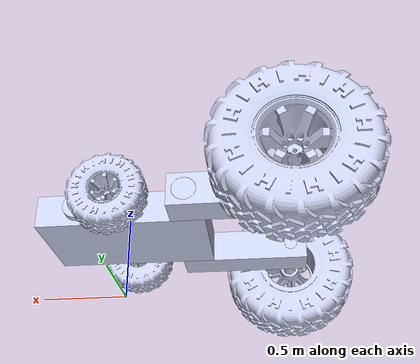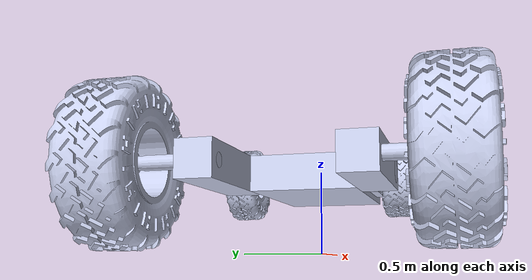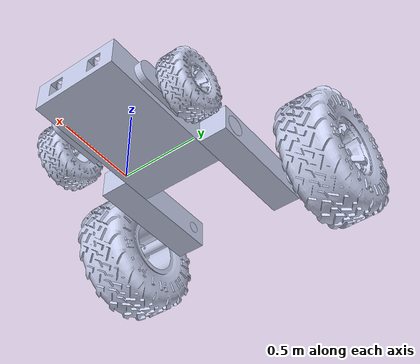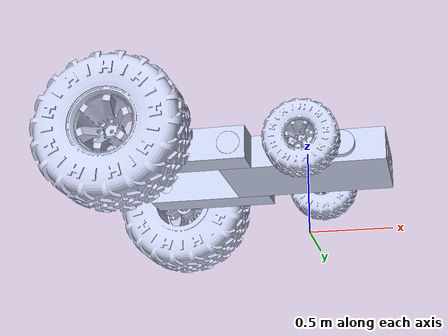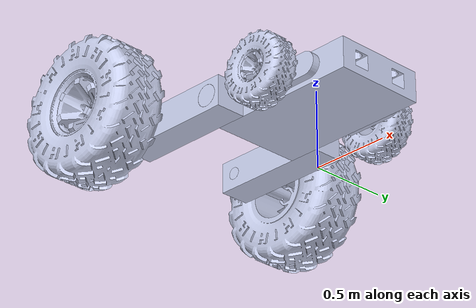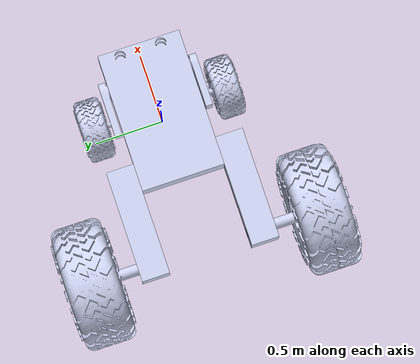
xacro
<?xml version="1.0" encoding="utf-8"?>
<robot
  name="optimus_rear" xmlns:xacro="http://ros.org/wiki/xacro">
  <link
    name="optimus_rear">
    <inertial>
      <origin
        xyz="-0.032745 -5.5511E-17 0.43999"
        rpy="0 0 0" />
      <mass
        value="122.38" />
      <inertia
        ixx="4.8763"
        ixy="4.5526E-16"
        ixz="0.00048288"
        iyy="10.603"
        iyz="-1.9615E-16"
        izz="14.68" />
    </inertial>
    <visual>
      <origin
        xyz="0 0 0"
        rpy="0 0 0" />
      <geometry>
        <mesh
          filename="package://optimus_rear/meshes/optimus_rear.STL" />
      </geometry>
      <material
        name="">
        <color
          rgba="0.79216 0.81961 0.93333 1" />
      </material>
    </visual>
    <collision>
      <origin
        xyz="0 0 0"
        rpy="0 0 0" />
      <geometry>
        <mesh
          filename="package://optimus_rear/meshes/optimus_rear.STL" />
      </geometry>
    </collision>
  </link>
  <link
    name="RR_outer_wheel_connector_link">
    <inertial>
      <origin
        xyz="-0.32228 -0.1 -3.7623E-17"
        rpy="0 0 0" />
      <mass
        value="27.916" />
      <inertia
        ixx="0.19555"
        ixy="-3.124E-17"
        ixz="-1.1044E-17"
        iyy="1.4236"
        iyz="-4.1633E-19"
        izz="1.4141" />
    </inertial>
    <visual>
      <origin
        xyz="0 0 0"
        rpy="0 0 0" />
      <geometry>
        <mesh
          filename="package://optimus_rear/meshes/RR_outer_wheel_connector_link.STL" />
      </geometry>
      <material
        name="">
        <color
          rgba="0.79216 0.81961 0.93333 1" />
      </material>
    </visual>
    <collision>
      <origin
        xyz="0 0 0"
        rpy="0 0 0" />
      <geometry>
        <mesh
          filename="package://optimus_rear/meshes/RR_outer_wheel_connector_link.STL" />
      </geometry>
    </collision>
  </link>
  <joint
    name="RR_outer_wheel_connector_joint"
    type="revolute">
    <origin
      xyz="-0.4 -0.3 0.44"
      rpy="0 0 0" />
    <parent
      link="optimus_rear" />
    <child
      link="RR_outer_wheel_connector_link" />
    <axis
      xyz="0 -1 0" />
    <limit
      lower="0"
      upper="0"
      effort="0"
      velocity="0" />
  </joint>
  <link
    name="RR_outer_wheel_link">
    <inertial>
      <origin
        xyz="3.1807E-06 -0.51235 -4.8697E-07"
        rpy="0 0 0" />
      <mass
        value="41.762" />
      <inertia
        ixx="2.9874"
        ixy="7.5461E-06"
        ixz="-2.8589E-06"
        iyy="4.6324"
        iyz="-1.1613E-06"
        izz="2.9874" />
    </inertial>
    <visual>
      <origin
        xyz="0 0 0"
        rpy="0 0 0" />
      <geometry>
        <mesh
          filename="package://optimus_rear/meshes/RR_outer_wheel_link.STL" />
      </geometry>
      <material
        name="">
        <color
          rgba="0.79216 0.81961 0.93333 1" />
      </material>
    </visual>
    <collision>
      <origin
        xyz="0 0 0"
        rpy="0 0 0" />
      <geometry>
        <mesh
          filename="package://optimus_rear/meshes/RR_outer_wheel_link.STL" />
      </geometry>
    </collision>
  </link>
  <joint
    name="RR_outer_wheel_joint"
    type="continuous">
    <origin
      xyz="-0.6 0 0"
      rpy="0 0 0" />
    <parent
      link="RR_outer_wheel_connector_link" />
    <child
      link="RR_outer_wheel_link" />
    <axis
      xyz="0 1 0" />
  </joint>
  <link
    name="RL_outer_wheel_connector_link">
    <inertial>
      <origin
        xyz="-0.32228 0.1 1.6733E-19"
        rpy="0 0 0" />
      <mass
        value="27.916" />
      <inertia
        ixx="0.19555"
        ixy="2.891E-17"
        ixz="-1.0999E-18"
        iyy="1.4236"
        iyz="-2.313E-17"
        izz="1.4141" />
    </inertial>
    <visual>
      <origin
        xyz="0 0 0"
        rpy="0 0 0" />
      <geometry>
        <mesh
          filename="package://optimus_rear/meshes/RL_outer_wheel_connector_link.STL" />
      </geometry>
      <material
        name="">
        <color
          rgba="0.79216 0.81961 0.93333 1" />
      </material>
    </visual>
    <collision>
      <origin
        xyz="0 0 0"
        rpy="0 0 0" />
      <geometry>
        <mesh
          filename="package://optimus_rear/meshes/RL_outer_wheel_connector_link.STL" />
      </geometry>
    </collision>
  </link>
  <joint
    name="RL_outer_wheel_connector_joint"
    type="revolute">
    <origin
      xyz="-0.4 0.3 0.44"
      rpy="0 0 0" />
    <parent
      link="optimus_rear" />
    <child
      link="RL_outer_wheel_connector_link" />
    <axis
      xyz="0 -1 0" />
    <limit
      lower="0"
      upper="0"
      effort="0"
      velocity="0" />
  </joint>
  <link
    name="RL_outer_wheel_link">
    <inertial>
      <origin
        xyz="2.27436845356976E-07 0.512347883757839 -3.20970488855976E-06"
        rpy="0 0 0" />
      <mass
        value="41.761984166342" />
      <inertia
        ixx="2.98738973759653"
        ixy="-5.45598729708646E-07"
        ixz="-1.35757783605366E-06"
        iyy="4.63242150319622"
        iyz="7.61544684929905E-06"
        izz="2.98740853390165" />
    </inertial>
    <visual>
      <origin
        xyz="0 0 0"
        rpy="0 0 0" />
      <geometry>
        <mesh
          filename="package://optimus_rear/meshes/RL_outer_wheel_link.STL" />
      </geometry>
      <material
        name="">
        <color
          rgba="0.792156862745098 0.819607843137255 0.933333333333333 1" />
      </material>
    </visual>
    <collision>
      <origin
        xyz="0 0 0"
        rpy="0 0 0" />
      <geometry>
        <mesh
          filename="package://optimus_rear/meshes/RL_outer_wheel_link.STL" />
      </geometry>
    </collision>
  </link>
  <joint
    name="RL_outer_wheel_joint"
    type="continuous">
    <origin
      xyz="-0.6 0 0"
      rpy="0 0 0" />
    <parent
      link="RL_outer_wheel_connector_link" />
    <child
      link="RL_outer_wheel_link" />
    <axis
      xyz="0 1 0" />
  </joint>
  <link
    name="RR_inner_wheel_connector_link">
    <inertial>
      <origin
        xyz="-0.124624737169442 -0.0341754333918177 -2.32784954891843E-17"
        rpy="0 0 0" />
      <mass
        value="2.85749443017902" />
      <inertia
        ixx="0.00581241279075832"
        ixy="-0.000293640119060309"
        ixz="-2.44150510912887E-18"
        iyy="0.0403263961411894"
        iyz="-2.95771892381289E-19"
        izz="0.03581067609395" />
    </inertial>
    <visual>
      <origin
        xyz="0 0 0"
        rpy="0 0 0" />
      <geometry>
        <mesh
          filename="package://optimus_rear/meshes/RR_inner_wheel_connector_link.STL" />
      </geometry>
      <material
        name="">
        <color
          rgba="0.792156862745098 0.819607843137255 0.933333333333333 1" />
      </material>
    </visual>
    <collision>
      <origin
        xyz="0 0 0"
        rpy="0 0 0" />
      <geometry>
        <mesh
          filename="package://optimus_rear/meshes/RR_inner_wheel_connector_link.STL" />
      </geometry>
    </collision>
  </link>
  <joint
    name="RR_inner_wheel_connector_joint"
    type="revolute">
    <origin
      xyz="0.25 -0.3 0.44"
      rpy="0 0 0" />
    <parent
      link="optimus_rear" />
    <child
      link="RR_inner_wheel_connector_link" />
    <axis
      xyz="0 -1 0" />
    <limit
      lower="0"
      upper="0"
      effort="0"
      velocity="0" />
  </joint>
  <link
    name="RR_inner_wheel_link">
    <inertial>
      <origin
        xyz="2.97853836375012E-06 -0.122556779088173 1.53650836933355E-06"
        rpy="0 0 0" />
      <mass
        value="5.00504892402156" />
      <inertia
        ixx="0.0924068394372551"
        ixy="2.12138162536787E-07"
        ixz="2.41480228589312E-07"
        iyy="0.144720367920822"
        iyz="1.09196430736826E-07"
        izz="0.0924064945212721" />
    </inertial>
    <visual>
      <origin
        xyz="0 0 0"
        rpy="0 0 0" />
      <geometry>
        <mesh
          filename="package://optimus_rear/meshes/RR_inner_wheel_link.STL" />
      </geometry>
      <material
        name="">
        <color
          rgba="0.792156862745098 0.819607843137255 0.933333333333333 1" />
      </material>
    </visual>
    <collision>
      <origin
        xyz="0 0 0"
        rpy="0 0 0" />
      <geometry>
        <mesh
          filename="package://optimus_rear/meshes/RR_inner_wheel_link.STL" />
      </geometry>
    </collision>
  </link>
  <joint
    name="RR_inner_wheel_joint"
    type="continuous">
    <origin
      xyz="-0.22 -0.06 0"
      rpy="0 0 0" />
    <parent
      link="RR_inner_wheel_connector_link" />
    <child
      link="RR_inner_wheel_link" />
    <axis
      xyz="0 1 0" />
  </joint>
  <link
    name="RL_inner_wheel_connector_link">
    <inertial>
      <origin
        xyz="-0.124624737169442 0.0341754333918178 1.39892114216578E-17"
        rpy="0 0 0" />
      <mass
        value="2.85749443017901" />
      <inertia
        ixx="0.0058124127907583"
        ixy="0.00029364011906031"
        ixz="-1.481758077131E-18"
        iyy="0.0403263961411894"
        iyz="-1.35800815531281E-19"
        izz="0.03581067609395" />
    </inertial>
    <visual>
      <origin
        xyz="0 0 0"
        rpy="0 0 0" />
      <geometry>
        <mesh
          filename="package://optimus_rear/meshes/RL_inner_wheel_connector_link.STL" />
      </geometry>
      <material
        name="">
        <color
          rgba="0.792156862745098 0.819607843137255 0.933333333333333 1" />
      </material>
    </visual>
    <collision>
      <origin
        xyz="0 0 0"
        rpy="0 0 0" />
      <geometry>
        <mesh
          filename="package://optimus_rear/meshes/RL_inner_wheel_connector_link.STL" />
      </geometry>
    </collision>
  </link>
  <joint
    name="RL_inner_wheel_connector_joint"
    type="revolute">
    <origin
      xyz="0.25 0.3 0.44"
      rpy="0 0 0" />
    <parent
      link="optimus_rear" />
    <child
      link="RL_inner_wheel_connector_link" />
    <axis
      xyz="0 -1 0" />
    <limit
      lower="0"
      upper="0"
      effort="0"
      velocity="0" />
  </joint>
  <link
    name="RL_inner_wheel_link">
    <inertial>
      <origin
        xyz="1.62196039494786E-06 0.122556778244548 -2.93282526099629E-06"
        rpy="0 0 0" />
      <mass
        value="5.00504874494794" />
      <inertia
        ixx="0.0924065097017377"
        ixy="-1.15654231958694E-07"
        ixz="-2.51695624288652E-07"
        iyy="0.144720367765485"
        iyz="2.08685034225381E-07"
        izz="0.0924068240448746" />
    </inertial>
    <visual>
      <origin
        xyz="0 0 0"
        rpy="0 0 0" />
      <geometry>
        <mesh
          filename="package://optimus_rear/meshes/RL_inner_wheel_link.STL" />
      </geometry>
      <material
        name="">
        <color
          rgba="0.792156862745098 0.819607843137255 0.933333333333333 1" />
      </material>
    </visual>
    <collision>
      <origin
        xyz="0 0 0"
        rpy="0 0 0" />
      <geometry>
        <mesh
          filename="package://optimus_rear/meshes/RL_inner_wheel_link.STL" />
      </geometry>
    </collision>
  </link>
  <joint
    name="RL_inner_wheel_joint"
    type="continuous">
    <origin
      xyz="-0.22 0.06 0"
      rpy="0 0 0" />
    <parent
      link="RL_inner_wheel_connector_link" />
    <child
      link="RL_inner_wheel_link" />
    <axis
      xyz="0 1 0" />
  </joint>

</robot>
